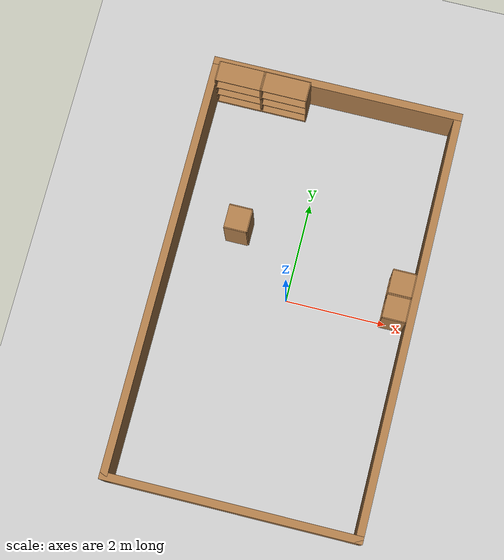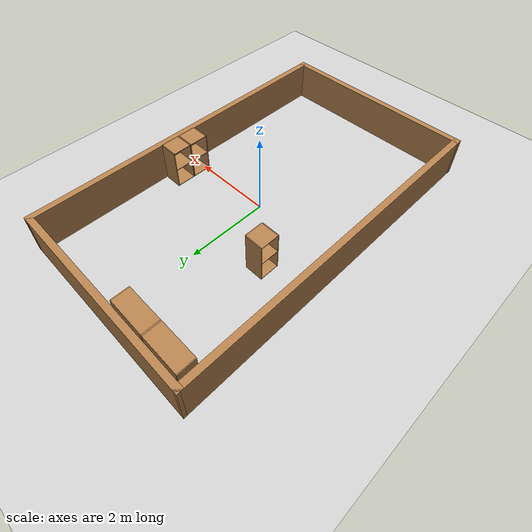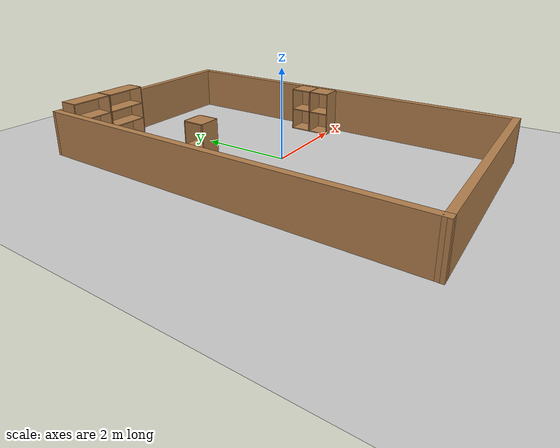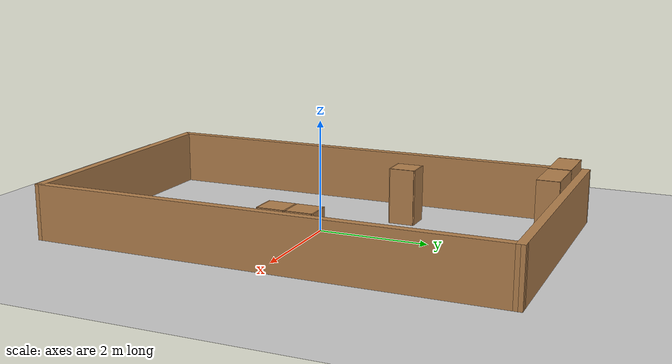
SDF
<sdf version="1.6">
 <world name="default">
  <light name="sun" type="directional">
   <pose>0 0 10 0 -0 0</pose>
   <diffuse>0.8 0.8 0.8 1</diffuse>
   <specular>0.2 0.2 0.2 1</specular>
   <attenuation>
    <range>1000</range>
    <constant>0.9</constant>
    <linear>0.01</linear>
    <quadratic>0.001</quadratic>
   </attenuation>
   <direction>-0.5 0.1 -0.9</direction>
  </light>
  <model name="ground_plane">
   <static>1</static>
   <link name="link">
    <collision name="collision">
     <geometry><plane><normal>0 0 1</normal><size>100 100</size></plane></geometry>
     <surface><friction><ode><mu>100</mu><mu2>50</mu2></ode></friction></surface>
    </collision>
    <visual name="visual">
     <cast_shadows>0</cast_shadows>
     <geometry><plane><normal>0 0 1</normal><size>100 100</size></plane></geometry>
     <material>
      <script><uri>file://media/materials/scripts/gazebo.material</uri><name>Gazebo/Grey</name></script>
     </material>
    </visual>
   </link>
  </model>
  <gravity>0 0 -9.8</gravity>
  <magnetic_field>6e-06 2.3e-05 -4.2e-05</magnetic_field>
  <atmosphere type="adiabatic"/>
  <physics name="default_physics" default="0" type="ode">
   <max_step_size>0.001</max_step_size>
   <real_time_factor>1</real_time_factor>
   <real_time_update_rate>1000</real_time_update_rate>
  </physics>
  <scene><ambient>0.4 0.4 0.4 1</ambient><background>0.7 0.7 0.7 1</background><shadows>1</shadows></scene>
  <audio><device>default</device></audio>
  <spherical_coordinates>
   <surface_model>EARTH_WGS84</surface_model>
   <latitude_deg>0</latitude_deg>
   <longitude_deg>0</longitude_deg>
   <elevation>0</elevation>
   <heading_deg>0</heading_deg>
  </spherical_coordinates>
  <model name="bookshelf">
   <static>1</static>
   <link name="link">
    <inertial><mass>1</mass></inertial>
    <collision name="back">
     <pose>0 0.005 0.6 0 -0 0</pose>
     <geometry><box><size>0.9 0.01 1.2</size></box></geometry>
    </collision>
    <visual name="visual1">
     <pose>0 0.005 0.6 0 -0 0</pose>
     <geometry><box><size>0.9 0.01 1.2</size></box></geometry>
     <material>
      <script><uri>file://media/materials/scripts/gazebo.material</uri><name>Gazebo/Wood</name></script>
     </material>
    </visual>
    <collision name="left_side">
     <pose>0.45 -0.195 0.6 0 -0 0</pose>
     <geometry><box><size>0.02 0.4 1.2</size></box></geometry>
    </collision>
    <visual name="visual2">
     <pose>0.45 -0.195 0.6 0 -0 0</pose>
     <geometry><box><size>0.02 0.4 1.2</size></box></geometry>
     <material>
      <script><uri>file://media/materials/scripts/gazebo.material</uri><name>Gazebo/Wood</name></script>
     </material>
    </visual>
    <collision name="right_side">
     <pose>-0.45 -0.195 0.6 0 -0 0</pose>
     <geometry><box><size>0.02 0.4 1.2</size></box></geometry>
    </collision>
    <visual name="visual3">
     <pose>-0.45 -0.195 0.6 0 -0 0</pose>
     <geometry><box><size>0.02 0.4 1.2</size></box></geometry>
     <material>
      <script><uri>file://media/materials/scripts/gazebo.material</uri><name>Gazebo/Wood</name></script>
     </material>
    </visual>
    <collision name="bottom">
     <pose>0 -0.195 0.03 0 -0 0</pose>
     <geometry><box><size>0.88 0.4 0.06</size></box></geometry>
    </collision>
    <visual name="visual4">
     <pose>0 -0.195 0.03 0 -0 0</pose>
     <geometry><box><size>0.88 0.4 0.06</size></box></geometry>
     <material>
      <script><uri>file://media/materials/scripts/gazebo.material</uri><name>Gazebo/Wood</name></script>
     </material>
    </visual>
    <collision name="top">
     <pose>0 -0.195 1.19 0 -0 0</pose>
     <geometry><box><size>0.88 0.4 0.02</size></box></geometry>
    </collision>
    <visual name="visual5">
     <pose>0 -0.195 1.19 0 -0 0</pose>
     <geometry><box><size>0.88 0.4 0.02</size></box></geometry>
     <material>
      <script><uri>file://media/materials/scripts/gazebo.material</uri><name>Gazebo/Wood</name></script>
     </material>
    </visual>
    <collision name="low_shelf">
     <pose>0 -0.195 0.43 0 -0 0</pose>
     <geometry><box><size>0.88 0.4 0.02</size></box></geometry>
    </collision>
    <visual name="visual6">
     <pose>0 -0.195 0.43 0 -0 0</pose>
     <geometry><box><size>0.88 0.4 0.02</size></box></geometry>
     <material>
      <script><uri>file://media/materials/scripts/gazebo.material</uri><name>Gazebo/Wood</name></script>
     </material>
    </visual>
    <collision name="high_shelf">
     <pose>0 -0.195 0.8 0 -0 0</pose>
     <geometry><box><size>0.88 0.4 0.02</size></box></geometry>
    </collision>
    <visual name="visual7">
     <pose>0 -0.195 0.8 0 -0 0</pose>
     <geometry><box><size>0.88 0.4 0.02</size></box></geometry>
     <material>
      <script><uri>file://media/materials/scripts/gazebo.material</uri><name>Gazebo/Wood</name></script>
     </material>
    </visual>
   </link>
   <pose>-1.88598 4.09313 0 0 0 -0.002028</pose>
  </model>
  <model name="cabinet">
   <static>1</static>
   <link name="cabinet_bottom_plate">
    <inertial>
     <pose>0 0 -1 0 -0 0</pose>
     <inertia><ixx>2.05</ixx><ixy>0</ixy><ixz>0</ixz><iyy>2.05</iyy><iyz>0</iyz><izz>2.05</izz></inertia>
     <mass>25</mass>
    </inertial>
    <collision name="cabinet_bottom_plate_geom">
     <pose>0 0 0.01 0 -0 0</pose>
     <geometry><box><size>0.45 0.45 0.02</size></box></geometry>
    </collision>
    <visual name="cabinet_bottom_plate_geom_visual">
     <pose>0 0 0.01 0 -0 0</pose>
     <geometry><box><size>0.45 0.45 0.02</size></box></geometry>
     <material>
      <script><uri>file://media/materials/scripts/gazebo.material</uri><name>Gazebo/Wood</name></script>
     </material>
    </visual>
    <collision name="cabinet_bottom_plate_geom_cabinet_back_plate">
     <pose>0.235 0 0.51 0 -0 0</pose>
     <geometry><box><size>0.02 0.45 1.02</size></box></geometry>
    </collision>
    <visual name="cabinet_bottom_plate_geom_cabinet_back_plate_visual">
     <pose>0.235 0 0.51 0 -0 0</pose>
     <geometry><box><size>0.02 0.45 1.02</size></box></geometry>
     <material>
      <script><uri>file://media/materials/scripts/gazebo.material</uri><name>Gazebo/Wood</name></script>
     </material>
    </visual>
    <collision name="cabinet_bottom_plate_geom_cabinet_left_plate">
     <pose>0 0.235 0.51 0 -0 0</pose>
     <geometry><box><size>0.45 0.02 1.02</size></box></geometry>
    </collision>
    <visual name="cabinet_bottom_plate_geom_cabinet_left_plate_visual">
     <pose>0 0.235 0.51 0 -0 0</pose>
     <geometry><box><size>0.45 0.02 1.02</size></box></geometry>
     <material>
      <script><uri>file://media/materials/scripts/gazebo.material</uri><name>Gazebo/Wood</name></script>
     </material>
    </visual>
    <collision name="cabinet_bottom_plate_geom_cabinet_middle_plate">
     <pose>0 0 0.51 0 -0 0</pose>
     <geometry><box><size>0.45 0.45 0.02</size></box></geometry>
    </collision>
    <visual name="cabinet_bottom_plate_geom_cabinet_middle_plate_visual">
     <pose>0 0 0.51 0 -0 0</pose>
     <geometry><box><size>0.45 0.45 0.02</size></box></geometry>
     <material>
      <script><uri>file://media/materials/scripts/gazebo.material</uri><name>Gazebo/Wood</name></script>
     </material>
    </visual>
    <collision name="cabinet_bottom_plate_geom_cabinet_right_plate">
     <pose>0 -0.235 0.51 0 -0 0</pose>
     <geometry><box><size>0.45 0.02 1.02</size></box></geometry>
    </collision>
    <visual name="cabinet_bottom_plate_geom_cabinet_right_plate_visual">
     <pose>0 -0.235 0.51 0 -0 0</pose>
     <geometry><box><size>0.45 0.02 1.02</size></box></geometry>
     <material>
      <script><uri>file://media/materials/scripts/gazebo.material</uri><name>Gazebo/Wood</name></script>
     </material>
    </visual>
    <collision name="cabinet_bottom_plate_geom_cabinet_top_plate">
     <pose>0 0 1.01 0 -0 0</pose>
     <geometry><box><size>0.45 0.45 0.02</size></box></geometry>
    </collision>
    <visual name="cabinet_bottom_plate_geom_cabinet_top_plate_visual">
     <pose>0 0 1.01 0 -0 0</pose>
     <geometry><box><size>0.45 0.45 0.02</size></box></geometry>
     <material>
      <script><uri>file://media/materials/scripts/gazebo.material</uri><name>Gazebo/Wood</name></script>
     </material>
    </visual>
   </link>
   <pose>-1.23664 1.16113 0 0 -0 0</pose>
  </model>
  <model name="sim_house_0">
   <pose>-0.002978 0.000416 0 0 0 -1.57034</pose>
   <link name="Wall_12">
    <collision name="Wall_12_Collision">
     <geometry><box><size>5 0.15 1</size></box></geometry>
     <pose>0 0 0.5 0 -0 0</pose>
    </collision>
    <visual name="Wall_12_Visual">
     <pose>0 0 0.5 0 -0 0</pose>
     <geometry><box><size>5 0.15 1</size></box></geometry>
     <material>
      <script><uri>file://media/materials/scripts/gazebo.material</uri><name>Gazebo/Wood</name></script>
      <ambient>1 1 1 1</ambient>
     </material>
     <meta><layer>0</layer></meta>
    </visual>
    <pose>-4.175 0.01 0 0 -0 -1.5708</pose>
   </link>
   <link name="Wall_13">
    <collision name="Wall_13_Collision">
     <geometry><box><size>8.5 0.15 1</size></box></geometry>
     <pose>0 0 0.5 0 -0 0</pose>
    </collision>
    <visual name="Wall_13_Visual">
     <pose>0 0 0.5 0 -0 0</pose>
     <geometry><box><size>8.5 0.15 1</size></box></geometry>
     <material>
      <script><uri>file://media/materials/scripts/gazebo.material</uri><name>Gazebo/Wood</name></script>
      <ambient>1 1 1 1</ambient>
     </material>
     <meta><layer>0</layer></meta>
    </visual>
    <pose>-0 -2.425 0 0 -0 -0.002395</pose>
   </link>
   <link name="Wall_15">
    <collision name="Wall_15_Collision">
     <geometry><box><size>8.5 0.15 1</size></box></geometry>
     <pose>0 0 0.5 0 -0 0</pose>
    </collision>
    <visual name="Wall_15_Visual">
     <pose>0 0 0.5 0 -0 0</pose>
     <geometry><box><size>8.5 0.15 1</size></box></geometry>
     <material>
      <script><uri>file://media/materials/scripts/gazebo.material</uri><name>Gazebo/Wood</name></script>
      <ambient>1 1 1 1</ambient>
     </material>
     <meta><layer>0</layer></meta>
    </visual>
    <pose>-0 2.425 0 0 -0 -0.002395</pose>
   </link>
   <link name="Wall_16">
    <collision name="Wall_16_Collision">
     <geometry><box><size>5 0.15 1</size></box></geometry>
     <pose>0 0 0.5 0 -0 0</pose>
    </collision>
    <visual name="Wall_16_Visual">
     <pose>0 0 0.5 0 -0 0</pose>
     <geometry><box><size>5 0.15 1</size></box></geometry>
     <material>
      <script><uri>file://media/materials/scripts/gazebo.material</uri><name>Gazebo/Wood</name></script>
      <ambient>1 1 1 1</ambient>
     </material>
     <meta><layer>0</layer></meta>
    </visual>
    <pose>4.175 -0.01 0 0 -0 -1.5708</pose>
   </link>
   <static>1</static>
  </model>
  <model name="bookshelf_clone">
   <static>1</static>
   <link name="link">
    <inertial><mass>1</mass></inertial>
    <collision name="back">
     <pose>0 0.005 0.6 0 -0 0</pose>
     <geometry><box><size>0.9 0.01 1.2</size></box></geometry>
    </collision>
    <visual name="visual1">
     <pose>0 0.005 0.6 0 -0 0</pose>
     <geometry><box><size>0.9 0.01 1.2</size></box></geometry>
     <material>
      <script><uri>file://media/materials/scripts/gazebo.material</uri><name>Gazebo/Wood</name></script>
     </material>
    </visual>
    <collision name="left_side">
     <pose>0.45 -0.195 0.6 0 -0 0</pose>
     <geometry><box><size>0.02 0.4 1.2</size></box></geometry>
    </collision>
    <visual name="visual2">
     <pose>0.45 -0.195 0.6 0 -0 0</pose>
     <geometry><box><size>0.02 0.4 1.2</size></box></geometry>
     <material>
      <script><uri>file://media/materials/scripts/gazebo.material</uri><name>Gazebo/Wood</name></script>
     </material>
    </visual>
    <collision name="right_side">
     <pose>-0.45 -0.195 0.6 0 -0 0</pose>
     <geometry><box><size>0.02 0.4 1.2</size></box></geometry>
    </collision>
    <visual name="visual3">
     <pose>-0.45 -0.195 0.6 0 -0 0</pose>
     <geometry><box><size>0.02 0.4 1.2</size></box></geometry>
     <material>
      <script><uri>file://media/materials/scripts/gazebo.material</uri><name>Gazebo/Wood</name></script>
     </material>
    </visual>
    <collision name="bottom">
     <pose>0 -0.195 0.03 0 -0 0</pose>
     <geometry><box><size>0.88 0.4 0.06</size></box></geometry>
    </collision>
    <visual name="visual4">
     <pose>0 -0.195 0.03 0 -0 0</pose>
     <geometry><box><size>0.88 0.4 0.06</size></box></geometry>
     <material>
      <script><uri>file://media/materials/scripts/gazebo.material</uri><name>Gazebo/Wood</name></script>
     </material>
    </visual>
    <collision name="top">
     <pose>0 -0.195 1.19 0 -0 0</pose>
     <geometry><box><size>0.88 0.4 0.02</size></box></geometry>
    </collision>
    <visual name="visual5">
     <pose>0 -0.195 1.19 0 -0 0</pose>
     <geometry><box><size>0.88 0.4 0.02</size></box></geometry>
     <material>
      <script><uri>file://media/materials/scripts/gazebo.material</uri><name>Gazebo/Wood</name></script>
     </material>
    </visual>
    <collision name="low_shelf">
     <pose>0 -0.195 0.43 0 -0 0</pose>
     <geometry><box><size>0.88 0.4 0.02</size></box></geometry>
    </collision>
    <visual name="visual6">
     <pose>0 -0.195 0.43 0 -0 0</pose>
     <geometry><box><size>0.88 0.4 0.02</size></box></geometry>
     <material>
      <script><uri>file://media/materials/scripts/gazebo.material</uri><name>Gazebo/Wood</name></script>
     </material>
    </visual>
    <collision name="high_shelf">
     <pose>0 -0.195 0.8 0 -0 0</pose>
     <geometry><box><size>0.88 0.4 0.02</size></box></geometry>
    </collision>
    <visual name="visual7">
     <pose>0 -0.195 0.8 0 -0 0</pose>
     <geometry><box><size>0.88 0.4 0.02</size></box></geometry>
     <material>
      <script><uri>file://media/materials/scripts/gazebo.material</uri><name>Gazebo/Wood</name></script>
     </material>
    </visual>
   </link>
   <pose>-0.96555 4.09327 0 0 0 -0.002028</pose>
  </model>
  <model name="cabinet_clone">
   <static>1</static>
   <link name="cabinet_bottom_plate">
    <inertial>
     <pose>0 0 -1 0 -0 0</pose>
     <inertia><ixx>2.05</ixx><ixy>0</ixy><ixz>0</ixz><iyy>2.05</iyy><iyz>0</iyz><izz>2.05</izz></inertia>
     <mass>25</mass>
    </inertial>
    <collision name="cabinet_bottom_plate_geom">
     <pose>0 0 0.01 0 -0 0</pose>
     <geometry><box><size>0.45 0.45 0.02</size></box></geometry>
    </collision>
    <visual name="cabinet_bottom_plate_geom_visual">
     <pose>0 0 0.01 0 -0 0</pose>
     <geometry><box><size>0.45 0.45 0.02</size></box></geometry>
     <material>
      <script><uri>file://media/materials/scripts/gazebo.material</uri><name>Gazebo/Wood</name></script>
     </material>
    </visual>
    <collision name="cabinet_bottom_plate_geom_cabinet_back_plate">
     <pose>0.235 0 0.51 0 -0 0</pose>
     <geometry><box><size>0.02 0.45 1.02</size></box></geometry>
    </collision>
    <visual name="cabinet_bottom_plate_geom_cabinet_back_plate_visual">
     <pose>0.235 0 0.51 0 -0 0</pose>
     <geometry><box><size>0.02 0.45 1.02</size></box></geometry>
     <material>
      <script><uri>file://media/materials/scripts/gazebo.material</uri><name>Gazebo/Wood</name></script>
     </material>
    </visual>
    <collision name="cabinet_bottom_plate_geom_cabinet_left_plate">
     <pose>0 0.235 0.51 0 -0 0</pose>
     <geometry><box><size>0.45 0.02 1.02</size></box></geometry>
    </collision>
    <visual name="cabinet_bottom_plate_geom_cabinet_left_plate_visual">
     <pose>0 0.235 0.51 0 -0 0</pose>
     <geometry><box><size>0.45 0.02 1.02</size></box></geometry>
     <material>
      <script><uri>file://media/materials/scripts/gazebo.material</uri><name>Gazebo/Wood</name></script>
     </material>
    </visual>
    <collision name="cabinet_bottom_plate_geom_cabinet_middle_plate">
     <pose>0 0 0.51 0 -0 0</pose>
     <geometry><box><size>0.45 0.45 0.02</size></box></geometry>
    </collision>
    <visual name="cabinet_bottom_plate_geom_cabinet_middle_plate_visual">
     <pose>0 0 0.51 0 -0 0</pose>
     <geometry><box><size>0.45 0.45 0.02</size></box></geometry>
     <material>
      <script><uri>file://media/materials/scripts/gazebo.material</uri><name>Gazebo/Wood</name></script>
     </material>
    </visual>
    <collision name="cabinet_bottom_plate_geom_cabinet_right_plate">
     <pose>0 -0.235 0.51 0 -0 0</pose>
     <geometry><box><size>0.45 0.02 1.02</size></box></geometry>
    </collision>
    <visual name="cabinet_bottom_plate_geom_cabinet_right_plate_visual">
     <pose>0 -0.235 0.51 0 -0 0</pose>
     <geometry><box><size>0.45 0.02 1.02</size></box></geometry>
     <material>
      <script><uri>file://media/materials/scripts/gazebo.material</uri><name>Gazebo/Wood</name></script>
     </material>
    </visual>
    <collision name="cabinet_bottom_plate_geom_cabinet_top_plate">
     <pose>0 0 1.01 0 -0 0</pose>
     <geometry><box><size>0.45 0.45 0.02</size></box></geometry>
    </collision>
    <visual name="cabinet_bottom_plate_geom_cabinet_top_plate_visual">
     <pose>0 0 1.01 0 -0 0</pose>
     <geometry><box><size>0.45 0.45 0.02</size></box></geometry>
     <material>
      <script><uri>file://media/materials/scripts/gazebo.material</uri><name>Gazebo/Wood</name></script>
     </material>
    </visual>
   </link>
   <pose>2.10381 0.668723 0 0 -0 0</pose>
  </model>
  <model name="cabinet_clone_0">
   <static>1</static>
   <link name="cabinet_bottom_plate">
    <inertial>
     <pose>0 0 -1 0 -0 0</pose>
     <inertia><ixx>2.05</ixx><ixy>0</ixy><ixz>0</ixz><iyy>2.05</iyy><iyz>0</iyz><izz>2.05</izz></inertia>
     <mass>25</mass>
    </inertial>
    <collision name="cabinet_bottom_plate_geom">
     <pose>0 0 0.01 0 -0 0</pose>
     <geometry><box><size>0.45 0.45 0.02</size></box></geometry>
    </collision>
    <visual name="cabinet_bottom_plate_geom_visual">
     <pose>0 0 0.01 0 -0 0</pose>
     <geometry><box><size>0.45 0.45 0.02</size></box></geometry>
     <material>
      <script><uri>file://media/materials/scripts/gazebo.material</uri><name>Gazebo/Wood</name></script>
     </material>
    </visual>
    <collision name="cabinet_bottom_plate_geom_cabinet_back_plate">
     <pose>0.235 0 0.51 0 -0 0</pose>
     <geometry><box><size>0.02 0.45 1.02</size></box></geometry>
    </collision>
    <visual name="cabinet_bottom_plate_geom_cabinet_back_plate_visual">
     <pose>0.235 0 0.51 0 -0 0</pose>
     <geometry><box><size>0.02 0.45 1.02</size></box></geometry>
     <material>
      <script><uri>file://media/materials/scripts/gazebo.material</uri><name>Gazebo/Wood</name></script>
     </material>
    </visual>
    <collision name="cabinet_bottom_plate_geom_cabinet_left_plate">
     <pose>0 0.235 0.51 0 -0 0</pose>
     <geometry><box><size>0.45 0.02 1.02</size></box></geometry>
    </collision>
    <visual name="cabinet_bottom_plate_geom_cabinet_left_plate_visual">
     <pose>0 0.235 0.51 0 -0 0</pose>
     <geometry><box><size>0.45 0.02 1.02</size></box></geometry>
     <material>
      <script><uri>file://media/materials/scripts/gazebo.material</uri><name>Gazebo/Wood</name></script>
     </material>
    </visual>
    <collision name="cabinet_bottom_plate_geom_cabinet_middle_plate">
     <pose>0 0 0.51 0 -0 0</pose>
     <geometry><box><size>0.45 0.45 0.02</size></box></geometry>
    </collision>
    <visual name="cabinet_bottom_plate_geom_cabinet_middle_plate_visual">
     <pose>0 0 0.51 0 -0 0</pose>
     <geometry><box><size>0.45 0.45 0.02</size></box></geometry>
     <material>
      <script><uri>file://media/materials/scripts/gazebo.material</uri><name>Gazebo/Wood</name></script>
     </material>
    </visual>
    <collision name="cabinet_bottom_plate_geom_cabinet_right_plate">
     <pose>0 -0.235 0.51 0 -0 0</pose>
     <geometry><box><size>0.45 0.02 1.02</size></box></geometry>
    </collision>
    <visual name="cabinet_bottom_plate_geom_cabinet_right_plate_visual">
     <pose>0 -0.235 0.51 0 -0 0</pose>
     <geometry><box><size>0.45 0.02 1.02</size></box></geometry>
     <material>
      <script><uri>file://media/materials/scripts/gazebo.material</uri><name>Gazebo/Wood</name></script>
     </material>
    </visual>
    <collision name="cabinet_bottom_plate_geom_cabinet_top_plate">
     <pose>0 0 1.01 0 -0 0</pose>
     <geometry><box><size>0.45 0.45 0.02</size></box></geometry>
    </collision>
    <visual name="cabinet_bottom_plate_geom_cabinet_top_plate_visual">
     <pose>0 0 1.01 0 -0 0</pose>
     <geometry><box><size>0.45 0.45 0.02</size></box></geometry>
     <material>
      <script><uri>file://media/materials/scripts/gazebo.material</uri><name>Gazebo/Wood</name></script>
     </material>
    </visual>
   </link>
   <pose>2.10261 0.181565 0 0 -0 0</pose>
  </model>
 </world>
</sdf>
